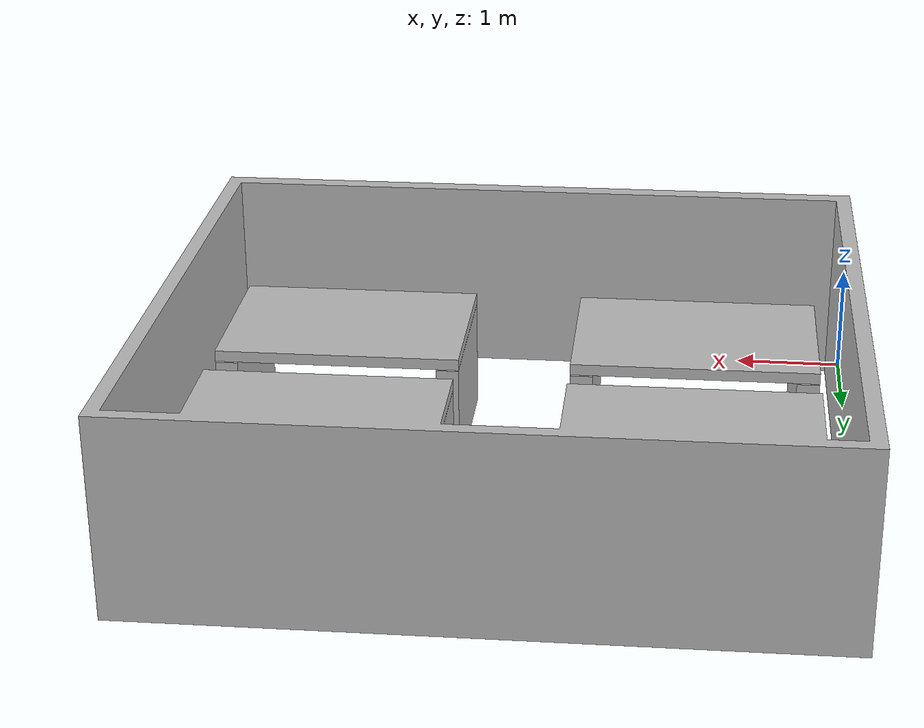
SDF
<?xml version='1.0'?>
<sdf version="1.6">
  <model name="geenhouse1">
    <pose>0 0 0 0 0 0</pose>
    <static>false</static>
    <link name="link">
      <collision name="collision">
        <geometry>
          <mesh>
	    <uri>model://greenhouse1/meshes/greenhouse.STL</uri>
            <scale>0.001 0.001 0.001</scale>
          </mesh>
        </geometry>
      </collision>
      <visual name="visual">
        <geometry>
          <mesh>
            <uri>model://greenhouse1/meshes/greenhouse.STL</uri>
            <scale>0.001 0.001 0.001</scale>
          </mesh>
        </geometry>
      </visual>
    </link>
  </model>
</sdf>
